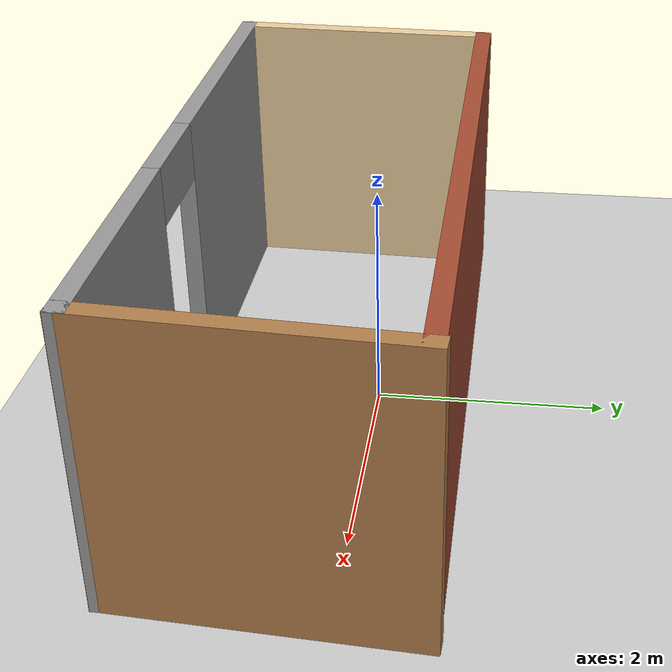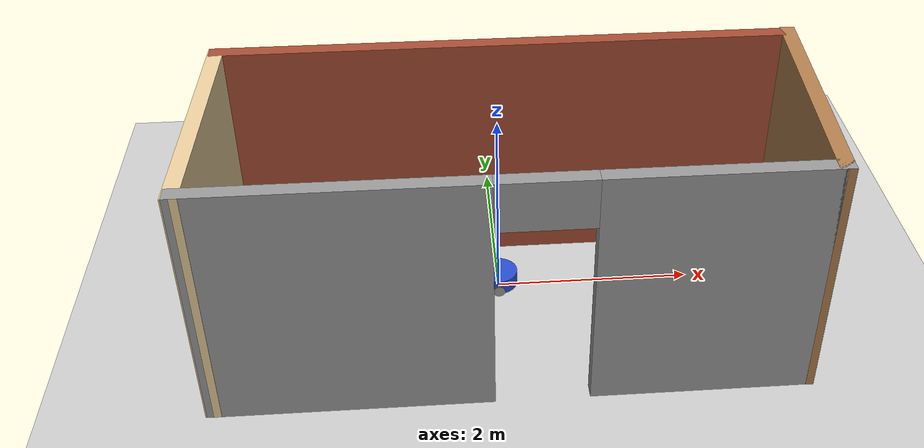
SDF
<sdf version="1.6">
 <world name="default">
  <light name="sun" type="directional">
   <pose>0 0 10 0 -0 0</pose>
   <diffuse>0.8 0.8 0.8 1</diffuse>
   <specular>0.1 0.1 0.1 1</specular>
   <attenuation>
    <range>1000</range>
    <constant>0.9</constant>
    <linear>0.01</linear>
    <quadratic>0.001</quadratic>
   </attenuation>
   <direction>-0.5 0.5 -1</direction>
  </light>
  <model name="ground_plane">
   <static>1</static>
   <link name="link">
    <collision name="collision">
     <geometry><plane><normal>0 0 1</normal><size>100 100</size></plane></geometry>
     <surface><friction><ode><mu>100</mu><mu2>50</mu2></ode></friction></surface>
    </collision>
    <visual name="visual">
     <cast_shadows>0</cast_shadows>
     <geometry><plane><normal>0 0 1</normal><size>100 100</size></plane></geometry>
     <material>
      <script><uri>file://media/materials/scripts/gazebo.material</uri><name>Gazebo/Grey</name></script>
     </material>
    </visual>
   </link>
  </model>
  <gravity>0 0 -9.8</gravity>
  <magnetic_field>6e-06 2.3e-05 -4.2e-05</magnetic_field>
  <atmosphere type="adiabatic"/>
  <physics name="default_physics" default="0" type="ode">
   <max_step_size>0.001</max_step_size>
   <real_time_factor>1</real_time_factor>
   <real_time_update_rate>1000</real_time_update_rate>
  </physics>
  <scene><ambient>0.4 0.4 0.4 1</ambient><background>0.7 0.7 0.7 1</background><shadows>1</shadows></scene>
  <spherical_coordinates>
   <surface_model>EARTH_WGS84</surface_model>
   <latitude_deg>0</latitude_deg>
   <longitude_deg>0</longitude_deg>
   <elevation>0</elevation>
   <heading_deg>0</heading_deg>
  </spherical_coordinates>
  <model name="mrobot">
   <link name="base_footprint">
    <inertial>
     <pose>0 0 0.11 0 -0 0</pose>
     <mass>20</mass>
     <inertia><ixx>0.242667</ixx><ixy>0</ixy><ixz>0</ixz><iyy>0.242667</iyy><iyz>0</iyz><izz>0.4</izz></inertia>
    </inertial>
    <collision name="base_footprint_fixed_joint_lump__base_link_collision">
     <pose>0 0 0.11 0 -0 0</pose>
     <geometry><cylinder><length>0.16</length><radius>0.2</radius></cylinder></geometry>
    </collision>
    <visual name="base_footprint_visual">
     <geometry><box><size>0.001 0.001 0.001</size></box></geometry>
     <material><script><uri>__default__</uri><name>__default__</name></script></material>
    </visual>
    <visual name="base_footprint_fixed_joint_lump__base_link_visual_1">
     <pose>0 0 0.11 0 -0 0</pose>
     <geometry><cylinder><length>0.16</length><radius>0.2</radius></cylinder></geometry>
     <material>
      <script><name>Gazebo/Blue</name><uri>file://media/materials/scripts/gazebo.material</uri></script>
     </material>
    </visual>
   </link>
   <link name="back_caster_link">
    <pose>0.18 0 0.015 0 -0 0</pose>
    <inertial>
     <mass>0.5</mass>
     <inertia><ixx>4.5e-05</ixx><ixy>0</ixy><ixz>0</ixz><iyy>4.5e-05</iyy><iyz>0</iyz><izz>4.5e-05</izz></inertia>
    </inertial>
    <collision name="back_caster_link_collision">
     <geometry><sphere><radius>0.015</radius></sphere></geometry>
    </collision>
    <visual name="back_caster_link_visual">
     <geometry><sphere><radius>0.015</radius></sphere></geometry>
     <material>
      <script><name>Gazebo/Black</name><uri>file://media/materials/scripts/gazebo.material</uri></script>
     </material>
    </visual>
   </link>
   <joint name="back_caster_joint" type="revolute">
    <child>back_caster_link</child>
    <parent>base_footprint</parent>
    <axis>
     <xyz>0 1 0</xyz>
     <limit><lower>-1e+16</lower><upper>1e+16</upper></limit>
     <dynamics><spring_reference>0</spring_reference><spring_stiffness>0</spring_stiffness></dynamics>
     <use_parent_model_frame>1</use_parent_model_frame>
    </axis>
   </joint>
   <link name="front_caster_link">
    <pose>-0.18 0 0.015 0 -0 0</pose>
    <inertial>
     <mass>0.5</mass>
     <inertia><ixx>4.5e-05</ixx><ixy>0</ixy><ixz>0</ixz><iyy>4.5e-05</iyy><iyz>0</iyz><izz>4.5e-05</izz></inertia>
    </inertial>
    <collision name="front_caster_link_collision">
     <geometry><sphere><radius>0.015</radius></sphere></geometry>
    </collision>
    <visual name="front_caster_link_visual">
     <geometry><sphere><radius>0.015</radius></sphere></geometry>
     <material>
      <script><name>Gazebo/Black</name><uri>file://media/materials/scripts/gazebo.material</uri></script>
     </material>
    </visual>
   </link>
   <joint name="front_caster_joint" type="revolute">
    <child>front_caster_link</child>
    <parent>base_footprint</parent>
    <axis>
     <xyz>0 1 0</xyz>
     <limit><lower>-1e+16</lower><upper>1e+16</upper></limit>
     <dynamics><spring_reference>0</spring_reference><spring_stiffness>0</spring_stiffness></dynamics>
     <use_parent_model_frame>1</use_parent_model_frame>
    </axis>
   </joint>
   <link name="left_wheel_link">
    <pose>0 -0.19 0.06 0 -0 0</pose>
    <inertial>
     <mass>2</mass>
     <inertia>
      <ixx>0.00190417</ixx>
      <ixy>0</ixy>
      <ixz>0</ixz>
      <iyy>0.00190417</iyy>
      <iyz>0</iyz>
      <izz>0.0036</izz>
     </inertia>
    </inertial>
    <collision name="left_wheel_link_collision">
     <pose>0 0 0 1.5708 -0 0</pose>
     <geometry><cylinder><length>0.025</length><radius>0.06</radius></cylinder></geometry>
    </collision>
    <visual name="left_wheel_link_visual">
     <pose>0 0 0 1.5708 -0 0</pose>
     <geometry><cylinder><length>0.025</length><radius>0.06</radius></cylinder></geometry>
     <material>
      <script><name>Gazebo/Gray</name><uri>file://media/materials/scripts/gazebo.material</uri></script>
     </material>
    </visual>
   </link>
   <joint name="left_wheel_joint" type="revolute">
    <child>left_wheel_link</child>
    <parent>base_footprint</parent>
    <axis>
     <xyz>0 1 0</xyz>
     <limit><lower>-1e+16</lower><upper>1e+16</upper></limit>
     <dynamics><spring_reference>0</spring_reference><spring_stiffness>0</spring_stiffness></dynamics>
     <use_parent_model_frame>1</use_parent_model_frame>
    </axis>
   </joint>
   <link name="right_wheel_link">
    <pose>0 0.19 0.06 0 -0 0</pose>
    <inertial>
     <mass>2</mass>
     <inertia>
      <ixx>0.00190417</ixx>
      <ixy>0</ixy>
      <ixz>0</ixz>
      <iyy>0.00190417</iyy>
      <iyz>0</iyz>
      <izz>0.0036</izz>
     </inertia>
    </inertial>
    <collision name="right_wheel_link_collision">
     <pose>0 0 0 1.5708 -0 0</pose>
     <geometry><cylinder><length>0.025</length><radius>0.06</radius></cylinder></geometry>
    </collision>
    <visual name="right_wheel_link_visual">
     <pose>0 0 0 1.5708 -0 0</pose>
     <geometry><cylinder><length>0.025</length><radius>0.06</radius></cylinder></geometry>
     <material>
      <script><name>Gazebo/Gray</name><uri>file://media/materials/scripts/gazebo.material</uri></script>
     </material>
    </visual>
   </link>
   <joint name="right_wheel_joint" type="revolute">
    <child>right_wheel_link</child>
    <parent>base_footprint</parent>
    <axis>
     <xyz>0 1 0</xyz>
     <limit><lower>-1e+16</lower><upper>1e+16</upper></limit>
     <dynamics><spring_reference>0</spring_reference><spring_stiffness>0</spring_stiffness></dynamics>
     <use_parent_model_frame>1</use_parent_model_frame>
    </axis>
   </joint>
   <static>0</static>
   <plugin name="differential_drive_controller" filename="libgazebo_ros_diff_drive.so">
    <rosDebugLevel>Debug</rosDebugLevel>
    <publishWheelTF>true</publishWheelTF>
    <robotNamespace>/</robotNamespace>
    <publishTf>1</publishTf>
    <publishWheelJointState>true</publishWheelJointState>
    <alwaysOn>true</alwaysOn>
    <updateRate>100.0</updateRate>
    <legacyMode>true</legacyMode>
    <leftJoint>left_wheel_joint</leftJoint>
    <rightJoint>right_wheel_joint</rightJoint>
    <wheelSeparation>0.38</wheelSeparation>
    <wheelDiameter>0.12</wheelDiameter>
    <broadcastTF>1</broadcastTF>
    <wheelTorque>30</wheelTorque>
    <wheelAcceleration>1.8</wheelAcceleration>
    <commandTopic>cmd_vel</commandTopic>
    <odometryFrame>odom</odometryFrame>
    <odometryTopic>odom</odometryTopic>
    <robotBaseFrame>base_footprint</robotBaseFrame>
   </plugin>
   <pose>-0.000452 0.000466 0 0 0 -2.6e-05</pose>
  </model>
  <model name="room">
   <pose>0.105894 -0.46 0 0 -0 0</pose>
   <link name="Wall_10">
    <collision name="Wall_10_Collision">
     <geometry><box><size>2.52135 0.15 2.5</size></box></geometry>
     <pose>0 0 1.25 0 -0 0</pose>
    </collision>
    <visual name="Wall_10_Visual">
     <pose>0 0 1.25 0 -0 0</pose>
     <geometry><box><size>2.52135 0.15 2.5</size></box></geometry>
     <material>
      <script><uri>file://media/materials/scripts/gazebo.material</uri><name>Gazebo/Grey</name></script>
      <ambient>0.921569 0.807843 0.615686 1</ambient>
     </material>
    </visual>
    <pose>-2.83589 -0.005 0 0 0 -1.60454</pose>
   </link>
   <link name="Wall_6">
    <pose>-0.065894 -1.19 0 0 -0 0</pose>
    <visual name="Wall_6_Visual_0">
     <pose>-1.52988 0 1.25 0 -0 0</pose>
     <geometry><box><size>2.69025 0.15 2.5</size></box></geometry>
     <material>
      <script><uri>file://media/materials/scripts/gazebo.material</uri><name>Gazebo/Grey</name></script>
      <ambient>1 1 1 1</ambient>
     </material>
    </visual>
    <collision name="Wall_6_Collision_0">
     <geometry><box><size>2.69025 0.15 2.5</size></box></geometry>
     <pose>-1.52988 0 1.25 0 -0 0</pose>
    </collision>
    <visual name="Wall_6_Visual_1">
     <pose>1.79512 0 1.25 0 -0 0</pose>
     <geometry><box><size>2.15975 0.15 2.5</size></box></geometry>
     <material>
      <script><uri>file://media/materials/scripts/gazebo.material</uri><name>Gazebo/Grey</name></script>
      <ambient>1 1 1 1</ambient>
     </material>
    </visual>
    <collision name="Wall_6_Collision_1">
     <geometry><box><size>2.15975 0.15 2.5</size></box></geometry>
     <pose>1.79512 0 1.25 0 -0 0</pose>
    </collision>
    <visual name="Wall_6_Visual_2">
     <pose>0.265246 0 2.25 0 -0 0</pose>
     <geometry><box><size>0.9 0.15 0.5</size></box></geometry>
     <material>
      <script><uri>file://media/materials/scripts/gazebo.material</uri><name>Gazebo/Grey</name></script>
      <ambient>1 1 1 1</ambient>
     </material>
    </visual>
    <collision name="Wall_6_Collision_2">
     <geometry><box><size>0.9 0.15 0.5</size></box></geometry>
     <pose>0.265246 0 2.25 0 -0 0</pose>
    </collision>
   </link>
   <link name="Wall_7">
    <collision name="Wall_7_Collision">
     <geometry><box><size>0.15 0.15 2.5</size></box></geometry>
     <pose>0 0 1.25 0 -0 0</pose>
    </collision>
    <visual name="Wall_7_Visual">
     <pose>0 0 1.25 0 -0 0</pose>
     <geometry><box><size>0.15 0.15 2.5</size></box></geometry>
     <material>
      <script><uri>file://media/materials/scripts/gazebo.material</uri><name>Gazebo/Grey</name></script>
      <ambient>1 1 1 1</ambient>
     </material>
    </visual>
    <pose>2.73411 -1.19 0 0 -0 0</pose>
   </link>
   <link name="Wall_8">
    <collision name="Wall_8_Collision">
     <geometry><box><size>2.53411 0.15 2.5</size></box></geometry>
     <pose>0 0 1.25 0 -0 0</pose>
    </collision>
    <visual name="Wall_8_Visual">
     <pose>0 0 1.25 0 -0 0</pose>
     <geometry><box><size>2.53411 0.15 2.5</size></box></geometry>
     <material>
      <script><uri>file://media/materials/scripts/gazebo.material</uri><name>Gazebo/Wood</name></script>
      <ambient>1 1 1 1</ambient>
     </material>
    </visual>
    <pose>2.80411 0 0 0 -0 1.51204</pose>
   </link>
   <link name="Wall_9">
    <collision name="Wall_9_Collision">
     <geometry><box><size>5.8 0.15 2.5</size></box></geometry>
     <pose>0 0 1.25 0 -0 0</pose>
    </collision>
    <visual name="Wall_9_Visual">
     <pose>0 0 1.25 0 -0 0</pose>
     <geometry><box><size>5.8 0.15 2.5</size></box></geometry>
     <material>
      <script><uri>file://media/materials/scripts/gazebo.material</uri><name>Gazebo/Bricks</name></script>
      <ambient>1 1 1 1</ambient>
     </material>
    </visual>
    <pose>0.039106 1.18 0 0 -0 3.14159</pose>
   </link>
   <static>1</static>
  </model>
 </world>
</sdf>
